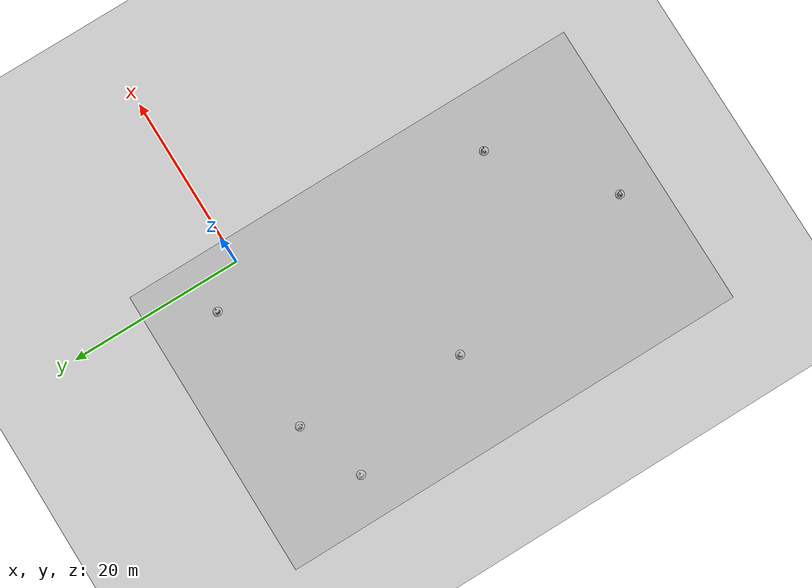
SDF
<sdf version="1.7">
 <world name="default">
  <light name="sun" type="directional">
   <pose>0 0 10 0 -0 0</pose>
   <diffuse>0.8 0.8 0.8 1</diffuse>
   <specular>0.2 0.2 0.2 1</specular>
   <attenuation>
    <range>1000</range>
    <constant>0.9</constant>
    <linear>0.01</linear>
    <quadratic>0.001</quadratic>
   </attenuation>
   <direction>-0.5 0.1 -0.9</direction>
   <spot><inner_angle>0</inner_angle><outer_angle>0</outer_angle><falloff>0</falloff></spot>
  </light>
  <model name="ground_plane">
   <static>1</static>
   <link name="link">
    <collision name="collision">
     <geometry><plane><normal>0 0 1</normal><size>100 100</size></plane></geometry>
     <surface>
      <contact><collide_bitmask>65535</collide_bitmask></contact>
      <friction><ode><mu>100</mu><mu2>50</mu2></ode></friction>
     </surface>
    </collision>
    <visual name="visual">
     <cast_shadows>0</cast_shadows>
     <geometry><plane><normal>0 0 1</normal><size>100 100</size></plane></geometry>
     <material>
      <script><uri>file://media/materials/scripts/gazebo.material</uri><name>Gazebo/Grey</name></script>
     </material>
    </visual>
   </link>
  </model>
  <gravity>0 0 -9.8</gravity>
  <magnetic_field>6e-06 2.3e-05 -4.2e-05</magnetic_field>
  <atmosphere type="adiabatic"/>
  <physics type="ode">
   <max_step_size>0.001</max_step_size>
   <real_time_factor>1</real_time_factor>
   <real_time_update_rate>1000</real_time_update_rate>
  </physics>
  <scene><ambient>0.4 0.4 0.4 1</ambient><background>0.7 0.7 0.7 1</background><shadows>1</shadows></scene>
  <spherical_coordinates>
   <surface_model>EARTH_WGS84</surface_model>
   <latitude_deg>0</latitude_deg>
   <longitude_deg>0</longitude_deg>
   <elevation>0</elevation>
   <heading_deg>0</heading_deg>
  </spherical_coordinates>
  <model name="igvc_track3">
   <static>1</static>
   <link name="link">
    <collision name="collision"><geometry><box><size>54.6608 33.8285 0.05</size></box></geometry></collision>
    <visual name="visual">
     <cast_shadows>0</cast_shadows>
     <geometry><box><size>54.6608 33.8285 0.05</size></box></geometry>
     <material>
      <script>
       <uri>model://igvc_track3/materials/scripts</uri>
       <uri>model://igvc_track3/materials/textures</uri>
       <name>vrc/ground</name>
      </script>
     </material>
    </visual>
   </link>
   <link name="link2">
    <collision name="collision"><geometry><box><size>54.6608 33.8285 0.05</size></box></geometry></collision>
    <visual name="visual">
     <cast_shadows>0</cast_shadows>
     <geometry><box><size>54.6608 33.8285 0.07</size></box></geometry>
     <material>
      <script>
       <uri>model://igvc_track3/materials/scripts</uri>
       <uri>model://igvc_track3/materials/textures</uri>
       <name>vrc/track</name>
      </script>
     </material>
    </visual>
   </link>
   <pose>-14.2143 -15.673 0 0 -0 1.5708</pose>
  </model>
  <model name="Construction Barrel">
   <link name="link">
    <inertial>
     <pose>0 0 0.4 0 -0 0</pose>
     <mass>500</mass>
     <inertia><ixx>51.2096</ixx><iyy>51.2096</iyy><izz>25</izz><ixy>0</ixy><ixz>0</ixz><iyz>0</iyz></inertia>
    </inertial>
    <collision name="collision">
     <geometry><mesh><uri>model://construction_barrel/meshes/construction_barrel.dae</uri></mesh></geometry>
    </collision>
    <visual name="visual">
     <geometry><mesh><uri>model://construction_barrel/meshes/construction_barrel.dae</uri></mesh></geometry>
    </visual>
   </link>
   <pose>-3.76693 -28.7802 0.024999 -1e-06 -3e-06 0.009567</pose>
  </model>
  <model name="Construction Barrel_0">
   <link name="link">
    <inertial>
     <pose>0 0 0.4 0 -0 0</pose>
     <mass>500</mass>
     <inertia><ixx>51.2096</ixx><iyy>51.2096</iyy><izz>25</izz><ixy>0</ixy><ixz>0</ixz><iyz>0</iyz></inertia>
    </inertial>
    <collision name="collision">
     <geometry><mesh><uri>model://construction_barrel/meshes/construction_barrel.dae</uri></mesh></geometry>
    </collision>
    <visual name="visual">
     <geometry><mesh><uri>model://construction_barrel/meshes/construction_barrel.dae</uri></mesh></geometry>
    </visual>
   </link>
   <pose>-21.0003 -15.031 0.024999 -1e-06 -3e-06 0.000216</pose>
  </model>
  <model name="Construction Barrel_2">
   <link name="link">
    <inertial>
     <pose>0 0 0.4 0 -0 0</pose>
     <mass>500</mass>
     <inertia><ixx>51.2096</ixx><iyy>51.2096</iyy><izz>25</izz><ixy>0</ixy><ixz>0</ixz><iyz>0</iyz></inertia>
    </inertial>
    <collision name="collision">
     <geometry><mesh><uri>model://construction_barrel/meshes/construction_barrel.dae</uri></mesh></geometry>
    </collision>
    <visual name="visual">
     <geometry><mesh><uri>model://construction_barrel/meshes/construction_barrel.dae</uri></mesh></geometry>
    </visual>
   </link>
   <pose>-18.5168 3.4114 0.024999 -2e-06 -4e-06 0.000471</pose>
  </model>
  <model name="Construction Barrel_4">
   <link name="link">
    <inertial>
     <pose>0 0 0.4 0 -0 0</pose>
     <mass>500</mass>
     <inertia><ixx>51.2096</ixx><iyy>51.2096</iyy><izz>25</izz><ixy>0</ixy><ixz>0</ixz><iyz>0</iyz></inertia>
    </inertial>
    <collision name="collision">
     <geometry><mesh><uri>model://construction_barrel/meshes/construction_barrel.dae</uri></mesh></geometry>
    </collision>
    <visual name="visual">
     <geometry><mesh><uri>model://construction_barrel/meshes/construction_barrel.dae</uri></mesh></geometry>
    </visual>
   </link>
   <pose>-26.2651 0.580482 0.025 2e-06 0 -7e-06</pose>
  </model>
  <model name="Construction Barrel_3">
   <link name="link">
    <inertial>
     <pose>0 0 0.4 0 -0 0</pose>
     <mass>500</mass>
     <inertia><ixx>51.2096</ixx><iyy>51.2096</iyy><izz>25</izz><ixy>0</ixy><ixz>0</ixz><iyz>0</iyz></inertia>
    </inertial>
    <collision name="collision">
     <geometry><mesh><uri>model://construction_barrel/meshes/construction_barrel.dae</uri></mesh></geometry>
    </collision>
    <visual name="visual">
     <geometry><mesh><uri>model://construction_barrel/meshes/construction_barrel.dae</uri></mesh></geometry>
    </visual>
   </link>
   <pose>-3.52281 4.48665 0.024999 3e-06 -0 0.005853</pose>
  </model>
  <model name="Construction Barrel_5">
   <link name="link">
    <inertial>
     <pose>0 0 0.4 0 -0 0</pose>
     <mass>500</mass>
     <inertia><ixx>51.2096</ixx><iyy>51.2096</iyy><izz>25</izz><ixy>0</ixy><ixz>0</ixz><iyz>0</iyz></inertia>
    </inertial>
    <collision name="collision">
     <geometry><mesh><uri>model://construction_barrel/meshes/construction_barrel.dae</uri></mesh></geometry>
    </collision>
    <visual name="visual">
     <geometry><mesh><uri>model://construction_barrel/meshes/construction_barrel.dae</uri></mesh></geometry>
    </visual>
   </link>
   <pose>-15.4224 -38.6709 0.024999 3e-06 -0 0.000502</pose>
  </model>
 </world>
</sdf>
